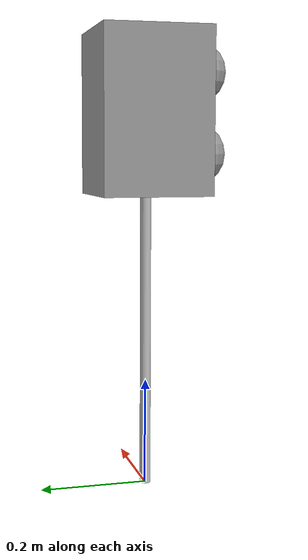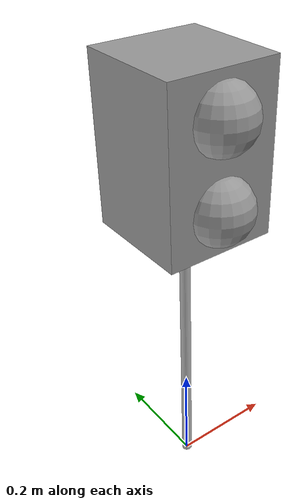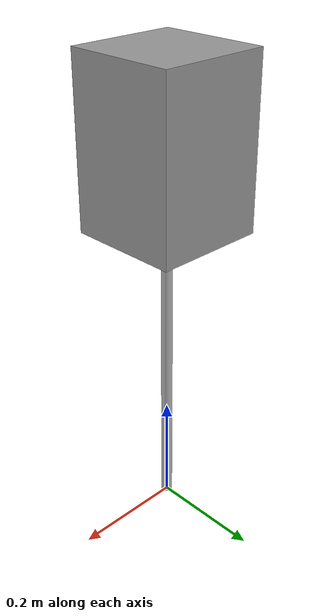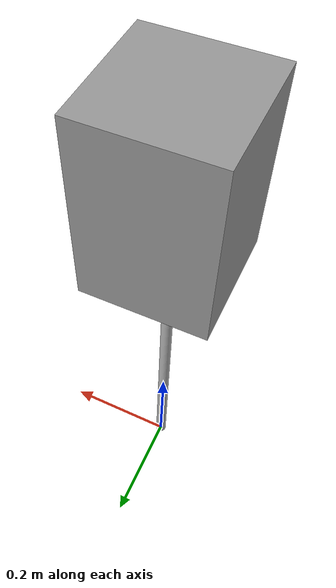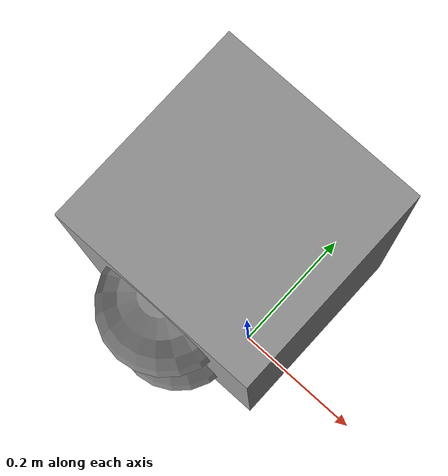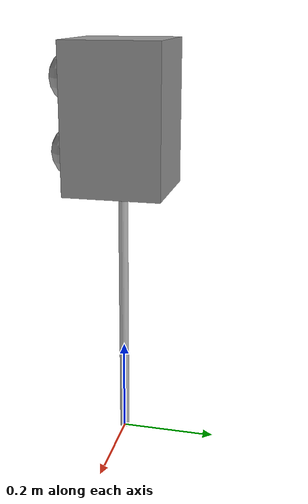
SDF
<?xml version="1.0"?>
<sdf version="1.6">
	<model name="tl">
		<link name="leg">
      		<pose>0 0 0.35 0 0 0</pose>
			<inertial>
				<mass>0.00693617</mass>
				<inertia>
					<ixx>0.00058102</ixx><ixy>0</ixy><ixz>0</ixz>
					<iyy>0.00058102</iyy><iyz>0</iyz>
					<izz>6.02e-06</izz>
				</inertia>
			</inertial>
			<gravity>0</gravity>
			<self_collide>0</self_collide>
			<kinematic>0</kinematic>
			<enable_wind>0</enable_wind>
			<visual name="visual">
				<geometry>
					<cylinder>
						<radius>0.01</radius>
						<length>0.7</length>
					</cylinder>
				</geometry>
				<material>Gazebo/Grey</material>
			</visual>
			<collision name="collision">
				<geometry>
					<cylinder>
						<radius>0.01</radius>
						<length>0.7</length>
					</cylinder>
				</geometry>
			</collision>
		</link>
		<link name="head">
      		<pose>0 0 0.7 0 0 0</pose>
			<inertial>
				<mass>0.00693617</mass>
				<inertia>
					<ixx>0.00058102</ixx><ixy>0</ixy><ixz>0</ixz>
					<iyy>0.00058102</iyy><iyz>0</iyz>
					<izz>6.02e-06</izz>
				</inertia>
			</inertial>
			<gravity>0</gravity>
			<self_collide>0</self_collide>
			<kinematic>0</kinematic>
			<enable_wind>0</enable_wind>
			<visual name="visual">
				<geometry>
					<box>
						<size>0.2 0.2 0.3</size>
					</box>
				</geometry>
        <material>
          <script>
            <uri>file://media/materials/scripts/gazebo.material</uri>
            <name>Gazebo/Grey</name>
          </script>
        </material>
			</visual>
			<collision name="collision">
				<geometry>
					<box>
						<size>0.2 0.2 0.3</size>
					</box>
				</geometry>
			</collision>
		</link>
		<link name="topSphere">
      		<pose>0 -0.09 0.775 0 0 0</pose>
			<inertial>
				<mass>0.00693617</mass>
				<inertia>
					<ixx>0.00058102</ixx><ixy>0</ixy><ixz>0</ixz>
					<iyy>0.00058102</iyy><iyz>0</iyz>
					<izz>6.02e-06</izz>
				</inertia>
			</inertial>
			<gravity>0</gravity>
			<self_collide>0</self_collide>
			<kinematic>0</kinematic>
			<enable_wind>0</enable_wind>
			<visual name="visual">
				<geometry>
					<sphere>
						<radius>0.06</radius>
					</sphere>
				</geometry>
        <material>
          <script>
            <uri>file://media/materials/scripts/gazebo.material</uri>
            <name>Gazebo/Grey</name>
          </script>
        </material>
				<plugin name="tf_plugin" filename="libtf_plugin.so"/>
			</visual>
			<collision name="collision">
				<geometry>
					<sphere>
						<radius>0.05</radius>
					</sphere>
				</geometry>
			</collision>
		</link>
		<link name="bottomSphere">
      		<pose>0 -0.09 0.625 0 0 0</pose>
			<inertial>
				<mass>0.00693617</mass>
				<inertia>
					<ixx>0.00058102</ixx><ixy>0</ixy><ixz>0</ixz>
					<iyy>0.00058102</iyy><iyz>0</iyz>
					<izz>6.02e-06</izz>
				</inertia>
			</inertial>
			<gravity>0</gravity>
			<self_collide>0</self_collide>
			<kinematic>0</kinematic>
			<enable_wind>0</enable_wind>
			<visual name="visual">
				<geometry>
					<sphere>
						<radius>0.06</radius>
					</sphere>
				</geometry>
				<material>
					<script>
						<uri>file://media/materials/scripts/gazebo.material</uri>
						<name>Gazebo/Grey</name>
					</script>
				</material>
				<plugin name="tf_plugin" filename="libtf_plugin.so"/>
			</visual>
			<collision name="collision">
				<geometry>
					<sphere>
						<radius>0.05</radius>
					</sphere>
				</geometry>
			</collision>
		</link>
		<static>1</static>
	</model>
</sdf>
